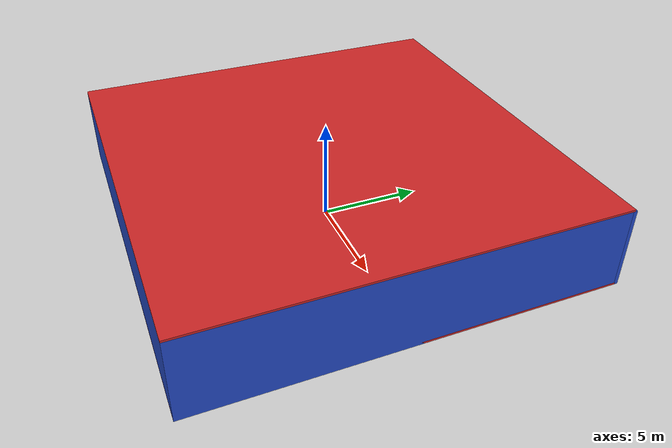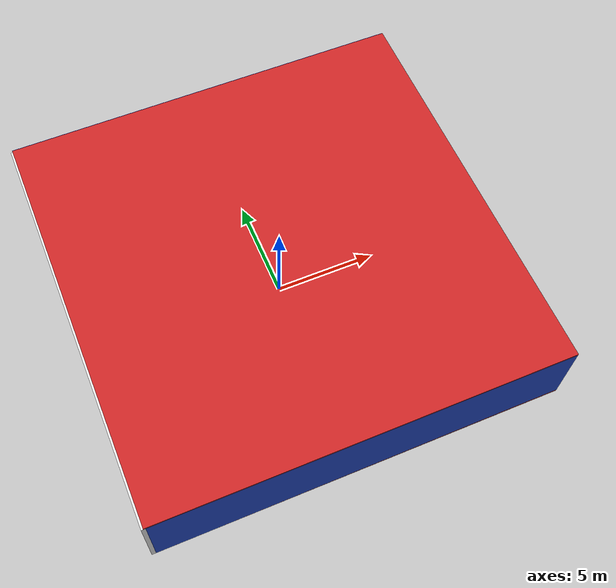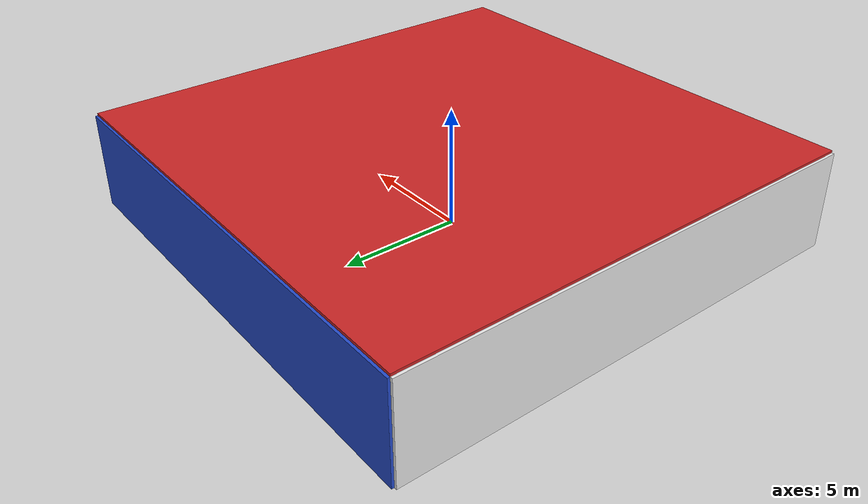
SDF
<sdf version="1.4">
 <world name="default">
  <physics type="ode">
   <max_step_size>0.001</max_step_size>
   <real_time_factor>1</real_time_factor>
   <real_time_update_rate>1000</real_time_update_rate>
   <gravity>0 0 -9.8</gravity>
  </physics>
  <scene><ambient>0.4 0.4 0.4 1</ambient><background>0.7 0.7 0.7 1</background><shadows>1</shadows></scene>
  <model name="Surrounding">
   <static>1</static>
   <link name="Ceiling">
    <collision name="Ceiling_Collision"><geometry><box><size>20 20 0.1</size></box></geometry></collision>
    <visual name="Ceiling_Visual">
     <geometry><box><size>20 20 0.1</size></box></geometry>
     <material>
      <script><uri>file://media/materials/scripts/gazebo.material</uri><name>Gazebo/RedGlow</name></script>
     </material>
    </visual>
    <pose>0 0 4.05 0 0 0</pose>
   </link>
   <link name="Wall_South">
    <collision name="Wall_South_Collision">
     <geometry><box><size>20 0 4</size></box></geometry>
     <pose>0 0 2 0 -0 0</pose>
    </collision>
    <visual name="Wall_South_Visual">
     <pose>0 0 2 0 -0 0</pose>
     <geometry><box><size>20 0 4</size></box></geometry>
     <material>
      <script><uri>file://media/materials/scripts/gazebo.material</uri><name>Gazebo/BlueGlow</name></script>
     </material>
    </visual>
    <velocity_decay><linear>0</linear><angular>0</angular></velocity_decay>
    <pose>0 -10 0 0 -0 0</pose>
   </link>
   <link name="Wall_East">
    <collision name="Wall_21_Collision">
     <geometry><box><size>20 0 4</size></box></geometry>
     <pose>0 0 2 0 -0 0</pose>
    </collision>
    <visual name="Wall_21_Visual">
     <pose>0 0 2 0 -0 0</pose>
     <geometry><box><size>20 0 4</size></box></geometry>
     <material>
      <script><uri>file://media/materials/scripts/gazebo.material</uri><name>Gazebo/Blue</name></script>
     </material>
    </visual>
    <velocity_decay><linear>0</linear><angular>0</angular></velocity_decay>
    <pose>10 0 0 0 -0 1.5708</pose>
   </link>
   <link name="Wall_North">
    <collision name="Wall_22_Collision">
     <geometry><box><size>20 0.2 4</size></box></geometry>
     <pose>0 0 2 0 -0 0</pose>
    </collision>
    <visual name="Wall_22_Visual">
     <pose>0 0 2 0 -0 0</pose>
     <geometry><box><size>20 0.2 4</size></box></geometry>
     <material>
      <script><uri>file://media/materials/scripts/gazebo.material</uri><name>Gazebo/BlueGlow</name></script>
     </material>
    </visual>
    <velocity_decay><linear>0</linear><angular>0</angular></velocity_decay>
    <pose>0 10 0 0 -0 0</pose>
   </link>
   <link name="Wall_West">
    <collision name="Wall_23_Collision">
     <geometry><box><size>20 0.2 4</size></box></geometry>
     <pose>0 0 2 0 -0 0</pose>
    </collision>
    <visual name="Wall_23_Visual">
     <pose>0 0 2 0 -0 0</pose>
     <geometry><box><size>20 0.2 4</size></box></geometry>
     <material>
      <script><uri>file://media/materials/scripts/gazebo.material</uri><name>Gazebo/White</name></script>
     </material>
    </visual>
    <velocity_decay><linear>0</linear><angular>0</angular></velocity_decay>
    <pose>-10 0 0 0 0 -1.5708</pose>
   </link>
   <link name="Ground_link">
    <collision name="collision">
     <pose>0 0 .05 0 -0 0</pose>
     <geometry><box><size>20 20 0.1</size></box></geometry>
    </collision>
    <visual name="visual">
     <pose>0 0 .05 0 -0 0</pose>
     <geometry><box><size>20 20 0.1</size></box></geometry>
     <material>
      <script><uri>file://media/materials/scripts/gazebo.material</uri><name>Gazebo/RedBright</name></script>
     </material>
    </visual>
   </link>
   <static>1</static>
  </model>
  <spherical_coordinates>
   <surface_model>EARTH_WGS84</surface_model>
   <latitude_deg>0</latitude_deg>
   <longitude_deg>0</longitude_deg>
   <elevation>0</elevation>
   <heading_deg>0</heading_deg>
  </spherical_coordinates>
  <light name="lightball_0" type="diffuse">
   <diffuse>0.8 0.8 0.8 1</diffuse>
   <specular>0.2 0.2 0.2 1</specular>
   <attenuation>
    <range>100</range>
    <constant>0.7</constant>
    <linear>0.01</linear>
    <quadratic>0.001</quadratic>
   </attenuation>
   <direction>-0.5 0.1 -0.9</direction>
   <pose>0.408145008864 -7.32939382093 0.974443838196 0 0 0</pose>
  </light>
  <light name="lightball_1" type="diffuse">
   <diffuse>0.8 0.8 0.8 1</diffuse>
   <specular>0.2 0.2 0.2 1</specular>
   <attenuation>
    <range>100</range>
    <constant>0.7</constant>
    <linear>0.01</linear>
    <quadratic>0.001</quadratic>
   </attenuation>
   <direction>-0.5 0.1 -0.9</direction>
   <pose>6.84778519511 5.37640538996 1.48919710638 0 0 0</pose>
  </light>
  <light name="lightball_2" type="diffuse">
   <diffuse>0.8 0.8 0.8 1</diffuse>
   <specular>0.2 0.2 0.2 1</specular>
   <attenuation>
    <range>100</range>
    <constant>0.7</constant>
    <linear>0.01</linear>
    <quadratic>0.001</quadratic>
   </attenuation>
   <direction>-0.5 0.1 -0.9</direction>
   <pose>-6.16545838093 3.52512451499 1.79393076139 0 0 0</pose>
  </light>
  <light name="lightball_3" type="diffuse">
   <diffuse>0.8 0.8 0.8 1</diffuse>
   <specular>0.2 0.2 0.2 1</specular>
   <attenuation>
    <range>100</range>
    <constant>0.7</constant>
    <linear>0.01</linear>
    <quadratic>0.001</quadratic>
   </attenuation>
   <direction>-0.5 0.1 -0.9</direction>
   <pose>3.7880814735 6.26100304557 1.36020372311 0 0 0</pose>
  </light>
  <light name="lightball_4" type="diffuse">
   <diffuse>0.8 0.8 0.8 1</diffuse>
   <specular>0.2 0.2 0.2 1</specular>
   <attenuation>
    <range>100</range>
    <constant>0.7</constant>
    <linear>0.01</linear>
    <quadratic>0.001</quadratic>
   </attenuation>
   <direction>-0.5 0.1 -0.9</direction>
   <pose>-9.25055657188 8.371496604 2.2673620422 0 0 0</pose>
  </light>
  <light name="lightball_5" type="diffuse">
   <diffuse>0.8 0.8 0.8 1</diffuse>
   <specular>0.2 0.2 0.2 1</specular>
   <attenuation>
    <range>100</range>
    <constant>0.7</constant>
    <linear>0.01</linear>
    <quadratic>0.001</quadratic>
   </attenuation>
   <direction>-0.5 0.1 -0.9</direction>
   <pose>-5.87178066696 -2.81268795458 3.66742152335 0 0 0</pose>
  </light>
  <light name="lightball_6" type="diffuse">
   <diffuse>0.8 0.8 0.8 1</diffuse>
   <specular>0.2 0.2 0.2 1</specular>
   <attenuation>
    <range>100</range>
    <constant>0.7</constant>
    <linear>0.01</linear>
    <quadratic>0.001</quadratic>
   </attenuation>
   <direction>-0.5 0.1 -0.9</direction>
   <pose>3.24478675093 6.22156709403 2.32571023284 0 0 0</pose>
  </light>
  <light name="lightball_7" type="diffuse">
   <diffuse>0.8 0.8 0.8 1</diffuse>
   <specular>0.2 0.2 0.2 1</specular>
   <attenuation>
    <range>100</range>
    <constant>0.7</constant>
    <linear>0.01</linear>
    <quadratic>0.001</quadratic>
   </attenuation>
   <direction>-0.5 0.1 -0.9</direction>
   <pose>3.34020453478 -6.11711432877 1.10796750732 0 0 0</pose>
  </light>
  <include>
   <uri>model://robocup_3Dsim_goal</uri>
   <pose>-8.57625392088 7.08203567626 0 0 0 1.66675523275</pose>
  </include>
  <include>
   <uri>model://robocup_3Dsim_goal</uri>
   <pose>-4.08277861086 7.6750296417 0 0 0 2.61030866671</pose>
  </include>
  <include>
   <uri>model://robocup_3Dsim_goal</uri>
   <pose>6.69316365658 0.491816277426 0 0 0 0.649243518654</pose>
  </include>
 </world>
</sdf>

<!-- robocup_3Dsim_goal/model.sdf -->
<sdf version="1.5">
  <model name="robocup_3d_goal">
    <static>true</static>
    <link name="left_post">
      <pose>0 1.05 0.45 0 0 0</pose>
      <collision name="collision">
        <geometry>
          <cylinder>
            <radius>0.05</radius>
            <length>0.9</length>
          </cylinder>
        </geometry>
      </collision>
      <visual name="visual">
        <geometry>
          <cylinder>
            <radius>0.05</radius>
            <length>0.9</length>
          </cylinder>
        </geometry>
        <material>
          <script>
            <uri>file://media/materials/scripts/gazebo.material</uri>
            <name>Gazebo/ZincYellow</name>
          </script>
        </material>
      </visual>
    </link>
    <link name="left_support_horiz_lower">
      <pose>0.30 1.05 0.01 0 0 0</pose>
      <collision name="collision">
        <geometry>
          <box>
            <size>0.50 0.02 0.02</size>
          </box>
        </geometry>
      </collision>
      <visual name="visual">
        <geometry>
          <box>
            <size>0.50 0.02 0.02</size>
          </box>
        </geometry>
        <material>
          <script>
            <uri>file://media/materials/scripts/gazebo.material</uri>
            <name>Gazebo/White</name>
          </script>
        </material>
      </visual>
    </link>
    <link name="left_support_horiz_upper">
      <pose>0.30 1.05 0.79 0 0 0</pose>
      <collision name="collision">
        <geometry>
          <box>
            <size>0.50 0.02 0.02</size>
          </box>
        </geometry>
      </collision>
      <visual name="visual">
        <geometry>
          <box>
            <size>0.50 0.02 0.02</size>
          </box>
        </geometry>
        <material>
          <script>
            <uri>file://media/materials/scripts/gazebo.material</uri>
            <name>Gazebo/White</name>
          </script>
        </material>
      </visual>
    </link>
    <link name="left_support_vertical">
      <pose>0.56 1.05 0.4 0 1.5708 0</pose>
      <collision name="collision">
        <geometry>
          <box>
            <size>0.80 0.02 0.02</size>
          </box>
        </geometry>
      </collision>
      <visual name="visual">
        <geometry>
          <box>
            <size>0.80 0.02 0.02</size>
          </box>
        </geometry>
        <material>
          <script>
            <uri>file://media/materials/scripts/gazebo.material</uri>
            <name>Gazebo/White</name>
          </script>
        </material>
      </visual>
    </link>
    <link name="right_support_horiz_lower">
      <pose>0.30 -1.05 0.01 0 0 0</pose>
      <collision name="collision">
        <geometry>
          <box>
            <size>0.50 0.02 0.02</size>
          </box>
        </geometry>
      </collision>
      <visual name="visual">
        <geometry>
          <box>
            <size>0.50 0.02 0.02</size>
          </box>
        </geometry>
        <material>
          <script>
            <uri>file://media/materials/scripts/gazebo.material</uri>
            <name>Gazebo/White</name>
          </script>
        </material>
      </visual>
    </link>
    <link name="right_support_horiz_upper">
      <pose>0.30 -1.05 0.79 0 0 0</pose>
      <collision name="collision">
        <geometry>
          <box>
            <size>0.50 0.02 0.02</size>
          </box>
        </geometry>
      </collision>
      <visual name="visual">
        <geometry>
          <box>
            <size>0.50 0.02 0.02</size>
          </box>
        </geometry>
        <material>
          <script>
            <uri>file://media/materials/scripts/gazebo.material</uri>
            <name>Gazebo/White</name>
          </script>
        </material>
      </visual>
    </link>
    <link name="right_support_vertical">
      <pose>0.56 -1.05 0.4 0 1.5708 0</pose>
      <collision name="collision">
        <geometry>
          <box>
            <size>0.80 0.02 0.02</size>
          </box>
        </geometry>
      </collision>
      <visual name="visual">
        <geometry>
          <box>
            <size>0.80 0.02 0.02</size>
          </box>
        </geometry>
        <material>
          <script>
            <uri>file://media/materials/scripts/gazebo.material</uri>
            <name>Gazebo/White</name>
          </script>
        </material>
      </visual>
    </link>
    <link name="center_support_horiz_lower">
      <pose>0.56 0 0.01 0 1.5708 0</pose>
      <collision name="collision">
        <geometry>
          <box>
            <size>0.02 2.08 0.02</size>
          </box>
        </geometry>
      </collision>
      <visual name="visual">
        <geometry>
          <box>
            <size>0.02 2.08 0.02</size>
          </box>
        </geometry>
        <material>
          <script>
            <uri>file://media/materials/scripts/gazebo.material</uri>
            <name>Gazebo/White</name>
          </script>
        </material>
      </visual>
    </link>
    <link name="center_support_horiz_upper">
      <pose>0.56 0 0.79 0 1.5708 0</pose>
      <collision name="collision">
        <geometry>
          <box>
            <size>0.02 2.08 0.02</size>
          </box>
        </geometry>
      </collision>
      <visual name="visual">
        <geometry>
          <box>
            <size>0.02 2.08 0.02</size>
          </box>
        </geometry>
        <material>
          <script>
            <uri>file://media/materials/scripts/gazebo.material</uri>
            <name>Gazebo/White</name>
          </script>
        </material>
      </visual>
    </link>
    <link name="right_post">
      <pose>0 -1.05 0.45 0 0 0</pose>
      <collision name="collision">
        <geometry>
          <cylinder>
            <radius>0.05</radius>
            <length>0.9</length>
          </cylinder>
        </geometry>
      </collision>
      <visual name="visual">
        <geometry>
          <cylinder>
            <radius>0.05</radius>
            <length>0.9</length>
          </cylinder>
        </geometry>
        <material>
          <script>
            <uri>file://media/materials/scripts/gazebo.material</uri>
            <name>Gazebo/ZincYellow</name>
          </script>
        </material>
      </visual>
    </link>
    <link name="crossbar">
      <pose>0 0 0.85 1.57 1.57 0</pose>
      <collision name="collision">
        <geometry>
          <cylinder>
            <radius>0.05</radius>
            <length>2.0</length>
          </cylinder>
        </geometry>
      </collision>
      <visual name="visual">
        <geometry>
          <cylinder>
            <radius>0.05</radius>
            <length>2.0</length>
          </cylinder>
        </geometry>
        <material>
          <script>
            <uri>file://media/materials/scripts/gazebo.material</uri>
            <name>Gazebo/ZincYellow</name>
          </script>
        </material>
      </visual>
    </link>
    <link name="center_net">
      <pose>0.56 0 0.40 0 0 0</pose>
      <collision name="collision">
        <geometry>
          <box>
            <size>0.01 2.1 0.80</size>
          </box>
        </geometry>
      </collision>
      <visual name="visual">
        <geometry>
          <box>
            <size>0.01 2.1 0.80</size>
          </box>
        </geometry>
        <material>
          <script>
            <uri>model://../model_source/models/robocup09_spl_field/materials/scripts/</uri>
            <uri>model://../model_source/models/robocup09_spl_field/materials/textures/</uri>
            <name>RoboCup/Net</name>
          </script>
        </material>
      </visual>
    </link>
    <link name="left_net">
      <pose>0.30 1.05 0.40 0 0 0</pose>
      <collision name="collision">
        <geometry>
          <box>
            <size>0.50 0.01 0.76</size>
          </box>
        </geometry>
      </collision>
      <visual name="visual">
        <geometry>
          <box>
            <size>0.50 0.01 0.76</size>
          </box>
        </geometry>
        <material>
          <script>
            <uri>model://../model_source/models/robocup09_spl_field/materials/scripts/</uri>
            <uri>model://../model_source/models/robocup09_spl_field/materials/textures/</uri>
            <name>RoboCup/Net</name>
          </script>
        </material>
      </visual>
    </link>
    <link name="right_net">
      <pose>0.30 -1.05 0.40 0 0 0</pose>
      <collision name="collision">
        <geometry>
          <box>
            <size>0.50 0.01 0.76</size>
          </box>
        </geometry>
      </collision>
      <visual name="visual">
        <geometry>
          <box>
            <size>0.50 0.01 0.76</size>
          </box>
        </geometry>
        <material>
          <script>
            <uri>model://../model_source/models/robocup09_spl_field/materials/scripts/</uri>
            <uri>model://../model_source/models/robocup09_spl_field/materials/textures/</uri>
            <name>RoboCup/Net</name>
          </script>
        </material>
      </visual>
    </link>
  </model>
</sdf>
